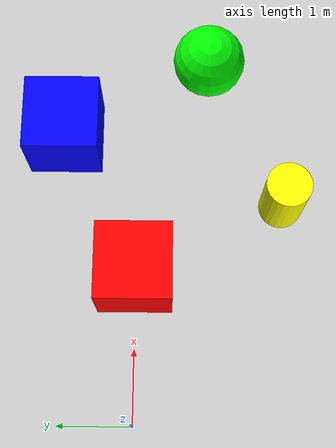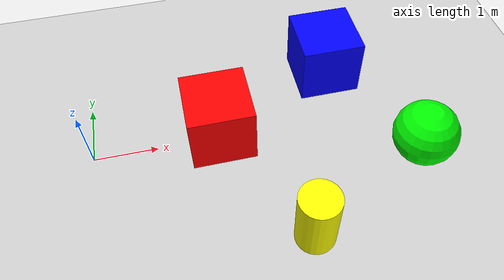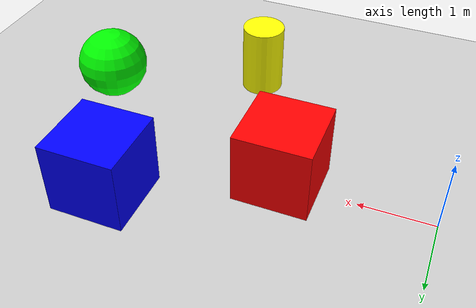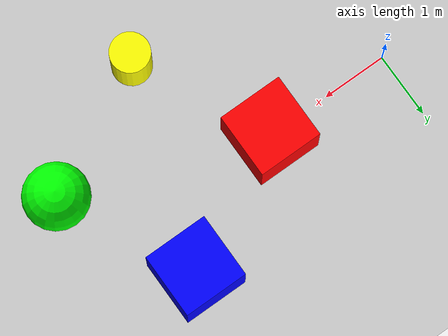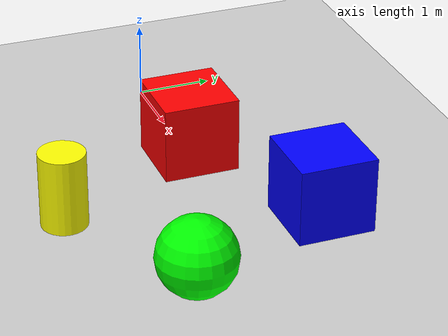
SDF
<?xml version="1.0" ?>
<sdf version="1.7">
    <world name="car_world">
        <physics name="1ms" type="ignored">
            <max_step_size>0.001</max_step_size>
            <real_time_factor>1.0</real_time_factor>
        </physics>
        <plugin
            filename="libignition-gazebo-physics-system.so"
            name="ignition::gazebo::systems::Physics">
        </plugin>
        <plugin
            filename="libignition-gazebo-user-commands-system.so"
            name="ignition::gazebo::systems::UserCommands">
        </plugin>
        <plugin
            filename="libignition-gazebo-scene-broadcaster-system.so"
            name="ignition::gazebo::systems::SceneBroadcaster">
        </plugin>
        <plugin
            filename="libignition-gazebo-sensors-system.so"
            name="ignition::gazebo::systems::Sensors">
        </plugin>

        <gui fullscreen="0">

            <!-- 3D scene -->
            <plugin filename="GzScene3D" name="3D View">
                <ignition-gui>
                <title>3D View</title>
                <property type="bool" key="showTitleBar">false</property>
                <property type="string" key="state">docked</property>
                </ignition-gui>

                <engine>ogre2</engine>
                <scene>scene</scene>
                <ambient_light>0.4 0.4 0.4</ambient_light>
                <background_color>0.8 0.8 0.8</background_color>
            </plugin>

            <!-- World control -->
            <plugin filename="WorldControl" name="World control">
                <ignition-gui>
                <title>World control</title>
                <property type="bool" key="showTitleBar">false</property>
                <property type="bool" key="resizable">false</property>
                <property type="double" key="height">72</property>
                <property type="double" key="width">121</property>
                <property type="double" key="z">1</property>

                <property type="string" key="state">floating</property>
                <anchors target="3D View">
                    <line own="left" target="left"/>
                    <line own="bottom" target="bottom"/>
                </anchors>
                </ignition-gui>

                <play_pause>true</play_pause>
                <step>true</step>
                <start_paused>true</start_paused>
                <service>/world/car_world/control</service>
                <stats_topic>/world/car_world/stats</stats_topic>
            </plugin>

            <!-- World statistics -->
            <plugin filename="WorldStats" name="World stats">
                <ignition-gui>
                <title>World stats</title>
                <property type="bool" key="showTitleBar">false</property>
                <property type="bool" key="resizable">false</property>
                <property type="double" key="height">110</property>
                <property type="double" key="width">290</property>
                <property type="double" key="z">1</property>

                <property type="string" key="state">floating</property>
                <anchors target="3D View">
                    <line own="right" target="right"/>
                    <line own="bottom" target="bottom"/>
                </anchors>
                </ignition-gui>

                <sim_time>true</sim_time>
                <real_time>true</real_time>
                <real_time_factor>true</real_time_factor>
                <iterations>true</iterations>
                <topic>/world/car_world/stats</topic>

            </plugin>

            <!-- Entity tree -->
            <plugin filename="EntityTree" name="Entity tree">
            </plugin>

        </gui>

        <light type="directional" name="sun">
            <cast_shadows>true</cast_shadows>
            <pose>0 0 10 0 0 0</pose>
            <diffuse>0.8 0.8 0.8 1</diffuse>
            <specular>0.2 0.2 0.2 1</specular>
            <attenuation>
                <range>1000</range>
                <constant>0.9</constant>
                <linear>0.01</linear>
                <quadratic>0.001</quadratic>
            </attenuation>
            <direction>-0.5 0.1 -0.9</direction>
        </light>

        <model name="ground_plane">
            <static>true</static>
            <link name="link">
                <collision name="collision">
                <geometry>
                    <plane>
                    <normal>0 0 1</normal>
                    </plane>
                </geometry>
                </collision>
                <visual name="visual">
                <geometry>
                    <plane>
                    <normal>0 0 1</normal>
                    <size>100 100</size>
                    </plane>
                </geometry>
                <material>
                    <ambient>0.8 0.8 0.8 1</ambient>
                    <diffuse>0.8 0.8 0.8 1</diffuse>
                    <specular>0.8 0.8 0.8 1</specular>
                </material>
                </visual>
            </link>
        </model>

        <!-- Test Objects for Object Detection -->
        <!-- Red Box -->
        <model name="test_box_1">
            <pose>2 0 0.5 0 0 0</pose>
            <link name="link">
                <inertial>
                    <mass>1.0</mass>
                    <inertia>
                        <ixx>0.166</ixx>
                        <iyy>0.166</iyy>
                        <izz>0.166</izz>
                    </inertia>
                </inertial>
                <collision name="collision">
                    <geometry>
                        <box>
                            <size>1 1 1</size>
                        </box>
                    </geometry>
                </collision>
                <visual name="visual">
                    <geometry>
                        <box>
                            <size>1 1 1</size>
                        </box>
                    </geometry>
                    <material>
                        <ambient>1 0 0 1</ambient>
                        <diffuse>1 0 0 1</diffuse>
                    </material>
                </visual>
            </link>
        </model>

        <!-- Blue Box -->
        <model name="test_box_2">
            <pose>4 1 0.5 0 0 0</pose>
            <link name="link">
                <inertial>
                    <mass>1.0</mass>
                    <inertia>
                        <ixx>0.166</ixx>
                        <iyy>0.166</iyy>
                        <izz>0.166</izz>
                    </inertia>
                </inertial>
                <collision name="collision">
                    <geometry>
                        <box>
                            <size>1 1 1</size>
                        </box>
                    </geometry>
                </collision>
                <visual name="visual">
                    <geometry>
                        <box>
                            <size>1 1 1</size>
                        </box>
                    </geometry>
                    <material>
                        <ambient>0 0 1 1</ambient>
                        <diffuse>0 0 1 1</diffuse>
                    </material>
                </visual>
            </link>
        </model>

        <!-- Yellow Cylinder -->
        <model name="test_cylinder">
            <pose>3 -2 0.5 0 0 0</pose>
            <link name="link">
                <inertial>
                    <mass>1.0</mass>
                    <inertia>
                        <ixx>0.05</ixx>
                        <iyy>0.05</iyy>
                        <izz>0.05</izz>
                    </inertia>
                </inertial>
                <collision name="collision">
                    <geometry>
                        <cylinder>
                            <radius>0.3</radius>
                            <length>1</length>
                        </cylinder>
                    </geometry>
                </collision>
                <visual name="visual">
                    <geometry>
                        <cylinder>
                            <radius>0.3</radius>
                            <length>1</length>
                        </cylinder>
                    </geometry>
                    <material>
                        <ambient>1 1 0 1</ambient>
                        <diffuse>1 1 0 1</diffuse>
                    </material>
                </visual>
            </link>
        </model>

        <!-- Green Sphere -->
        <model name="test_sphere">
            <pose>5 -1 0.5 0 0 0</pose>
            <link name="link">
                <inertial>
                    <mass>1.0</mass>
                    <inertia>
                        <ixx>0.04</ixx>
                        <iyy>0.04</iyy>
                        <izz>0.04</izz>
                    </inertia>
                </inertial>
                <collision name="collision">
                    <geometry>
                        <sphere>
                            <radius>0.5</radius>
                        </sphere>
                    </geometry>
                </collision>
                <visual name="visual">
                    <geometry>
                        <sphere>
                            <radius>0.5</radius>
                        </sphere>
                    </geometry>
                    <material>
                        <ambient>0 1 0 1</ambient>
                        <diffuse>0 1 0 1</diffuse>
                    </material>
                </visual>
            </link>
        </model>

    </world>
</sdf>
